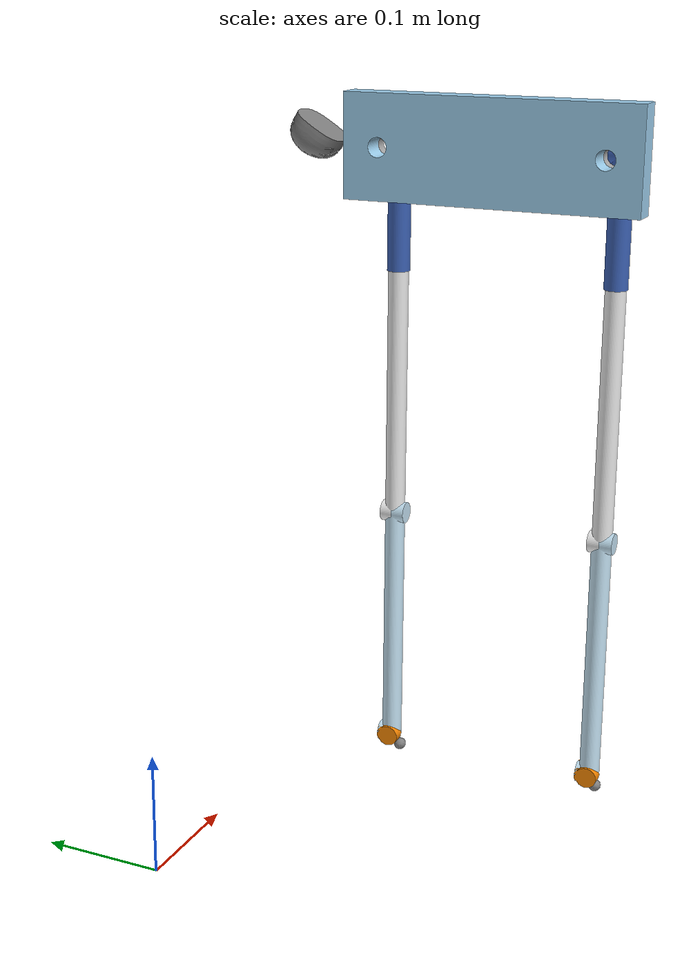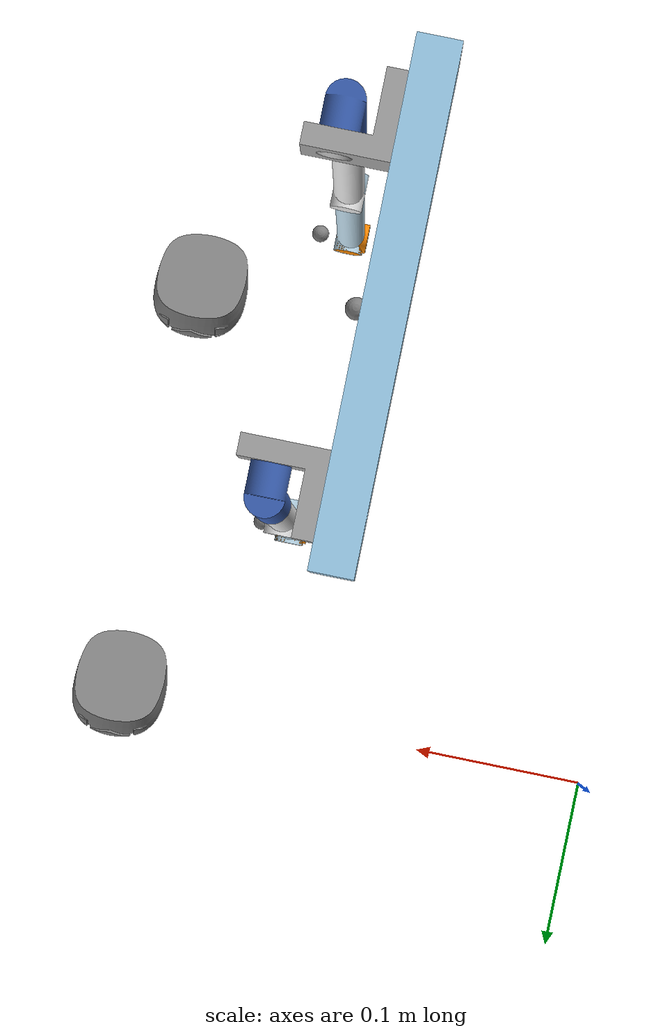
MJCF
<?xml version="1.0" ?>
<!-- Generated using onshape-to-robot -->
<!-- Onshape document_id: e804ad521de5849fb5d906f3 -->
<mujoco model="xmls">
  <compiler angle="radian" meshdir="assets" autolimits="true"/>
  <option noslip_iterations="1"/>
  <default>
    <default class="xmls">
      <joint frictionloss="0.1" armature="0.005"/>
      <position kp="50" dampratio="1"/>
      <default class="visual">
        <geom type="mesh" contype="0" conaffinity="0" group="2"/>
      </default>
      <default class="collision">
        <geom group="3"/>
      </default>
    </default>
  </default>
  <!-- Additional sensors.xml -->
  <sensor>
    <gyro site="trunk" name="gyro"/>
    <velocimeter site="trunk" name="local_linvel"/>
    <accelerometer site="trunk" name="accelerometer"/>
    <framezaxis objtype="site" objname="trunk" name="upvector"/>
    <framexaxis objtype="site" objname="trunk" name="forwardvector"/>
    <framelinvel objtype="site" objname="trunk" name="global_linvel"/>
    <frameangvel objtype="site" objname="trunk" name="global_angvel"/>
    <framepos objtype="site" objname="trunk" name="position"/>
    <framequat objtype="site" objname="trunk" name="orientation"/>
    <framelinvel objtype="site" objname="right_foot" name="right_foot_global_linvel"/>
    <framelinvel objtype="site" objname="left_foot" name="left_foot_global_linvel"/>
    <framexaxis objtype="site" objname="left_foot" name="left_foot_upvector"/>
    <framexaxis objtype="site" objname="right_foot" name="right_foot_upvector"/>
    <framepos objtype="site" objname="left_foot" name="left_foot_pos"/>
    <framepos objtype="site" objname="right_foot" name="right_foot_pos"/>
  </sensor>
  <!-- Additional joints_properties.xml -->
  <default>
    <default class="actuator">
      <geom contype="0" conaffinity="0"/>
      <joint damping="0.60" frictionloss="0.052" armature="0.028"/>
      <position kp="17.8" kv="0.0" forcerange="-3.35 3.35"/>
    </default>
    <default class="backlash">
      <!-- +/- 0.5° of backlash -->
      <joint damping="0.01" frictionloss="0" armature="0.01" limited="true" range="-0.008726646259971648 0.008726646259971648"/>
    </default>
  </default>
  <worldbody>
    <!-- Link part_1 -->
    <body name="part_1" pos="0 0 0.5" quat="1 0 0 0" childclass="xmls">
      <freejoint name="part_1_freejoint"/>
      <inertial pos="0.165033 -0.204503 0.0575783" mass="0.451164" fullinertia="0.00220527 0.000260248 0.0019751 5.24043e-21 2.60518e-20 -7.22333e-20"/>
      <!-- Part part_1 -->
      <geom type="mesh" class="visual" pos="0.155033 -0.204503 0.0575783" quat="0.707107 -1.24826e-16 1.11022e-16 0.707107" mesh="part_1" material="part_1_material"/>
      <!-- Frame trunk -->
      <site group="0" name="trunk" pos="0.177533 -0.204503 0.0575783" quat="1 -5.55112e-17 2.22045e-16 1.34714e-18"/>
      <!-- Link part_2 -->
      <body name="part_2" pos="0.175033 -0.117003 0.0575783" quat="0.5 -0.5 -0.5 0.5">
        <!-- Joint from part_1 to part_2 -->
        <joint name="left_hip_roll" type="hinge" range="-0.7853981633974483 0.7853981633974483" class="actuator"/>
        <inertial pos="-0.0116006 2.25352e-19 -0.0131167" mass="0.0215278" fullinertia="4.88403e-06 6.00093e-06 4.91185e-06 1.27448e-37 -1.46767e-06 -3.09513e-38"/>
        <!-- Part part_2 -->
        <geom type="mesh" class="visual" pos="-0.0875 -1.38778e-17 0.02" quat="0.707107 0.707107 -0 -2.79664e-35" mesh="part_2" material="part_2_material"/>
        <!-- Link part_3 -->
        <body name="part_3" pos="-0.015 -1.38778e-17 -0.025" quat="0.707107 -4.15832e-16 -0.707107 -8.88178e-16">
          <!-- Joint from part_2 to part_3 -->
          <joint name="left_hip_pitch" type="hinge" range="-0.3490658503988659 1.5707963267948966" class="actuator"/>
          <inertial pos="3.40913e-09 0.0448354 -0.0141247" mass="0.0353649" fullinertia="3.59567e-05 1.66969e-06 3.57291e-05 1.41653e-11 2.91851e-11 1.40753e-06"/>
          <!-- Part part_3 -->
          <geom type="mesh" class="visual" pos="0.045 -6.245e-17 0.0725" quat="0.5 0.5 0.5 -0.5" mesh="part_3" material="part_3_material"/>
          <!-- Link part_4 -->
          <body name="part_4" pos="0 0.1 -0.015" quat="0.5 0.5 0.5 -0.5">
            <!-- Joint from part_3 to part_4 -->
            <joint name="left_hip_yaw" type="hinge" range="-2.6179938779914944 2.6179938779914944" class="actuator"/>
            <inertial pos="0.000209384 8.57718e-09 -0.103723" mass="0.0521727" fullinertia="0.000187482 0.00018752 1.72388e-06 -7.06323e-13 1.06442e-06 3.38151e-11"/>
            <!-- Part part_4 -->
            <geom type="mesh" class="visual" pos="-0.0875 0.045 0.1" quat="1 0 -1.44284e-18 -3.65021e-20" mesh="part_4" material="part_4_material"/>
            <!-- Link part_5 -->
            <body name="part_5" pos="0 0 -0.2" quat="0.5 0.5 0.5 0.5">
              <!-- Joint from part_4 to part_5 -->
              <joint name="left_knee" type="hinge" range="0.0 1.5707963267948966" class="actuator"/>
              <inertial pos="-4.29344e-08 -0.1 1.42274e-08" mass="0.0540806" fullinertia="0.000208137 1.84387e-06 0.000208057 7.1479e-11 9.65571e-12 2.21017e-06"/>
              <!-- Part part_5 -->
              <geom type="mesh" class="visual" pos="0.045 0.3 -0.0875" quat="0.5 -0.5 -0.5 -0.5" mesh="part_5" material="part_5_material"/>
              <!-- Link part_6 -->
              <body name="part_6" pos="4.16334e-16 -0.2 0.01" quat="5.53064e-17 -5.20417e-18 1.10818e-16 1">
                <!-- Joint from part_5 to part_6 -->
                <joint name="left_ankle_pitch" type="hinge" range="-1.5707963267948966 1.5707963267948966" class="actuator"/>
                <inertial pos="-0.00222383 0 -0.00777617" mass="0.00465095" fullinertia="1.90809e-07 2.06197e-07 1.90809e-07 2.10229e-12 -3.77922e-08 2.10229e-12"/>
                <!-- Part part_6 -->
                <geom type="mesh" class="visual" pos="0.045 -0.5 0.0775" quat="0.5 0.5 0.5 -0.5" mesh="part_6" material="part_6_material"/>
                <!-- Link foot -->
                <body name="foot" pos="-0.01 0 -0.01" quat="0.707107 1.03325e-16 0.707107 -2.22045e-16">
                  <!-- Joint from part_6 to foot -->
                  <joint name="left_ankle_roll" type="hinge" range="-0.7853981633974483 0.7853981633974483" class="actuator"/>
                  <inertial pos="-3.76166e-09 0.0136645 0.0226826" mass="0.0306953" fullinertia="1.34934e-05 1.34204e-05 3.57951e-06 -3.33658e-12 3.03112e-13 -1.34506e-06"/>
                  <!-- Part foot -->
                  <geom type="mesh" class="visual" pos="-0.0875 -0.5 0.055" quat="0.707107 0.707107 -0 1.96673e-33" mesh="foot" material="foot_material"/>
                  <geom type="mesh" class="collision" pos="-0.0875 -0.5 0.055" quat="0.707107 0.707107 -0 1.96673e-33" mesh="foot" material="foot_material"  name="left_foot_bottom"/>
                  <!-- Frame left_foot -->
                  <site group="0" name="left_foot" pos="-5.55112e-17 0.0200185 0.028571" quat="0.5 0.5 -0.5 0.5"/>
                </body>
              </body>
            </body>
          </body>
        </body>
      </body>
      <!-- Link part_2_2 -->
      <body name="part_2_2" pos="0.175033 -0.292003 0.0575783" quat="0.5 0.5 -0.5 -0.5">
        <!-- Joint from part_1 to part_2_2 -->
        <joint name="right_hip_roll" type="hinge" range="-0.7853981633974483 0.7853981633974483" class="actuator"/>
        <inertial pos="-0.0116006 2.25352e-19 -0.0131167" mass="0.0215278" fullinertia="4.88403e-06 6.00093e-06 4.91185e-06 0 -1.46767e-06 0"/>
        <!-- Part part_2_2 -->
        <geom type="mesh" class="visual" pos="-0.0875 -1.38778e-17 0.02" quat="0.707107 0.707107 0 1.0358e-34" mesh="part_2" material="part_2_material"/>
        <!-- Link part_3_2 -->
        <body name="part_3_2" pos="-0.015 4.85723e-17 -0.025" quat="3.23091e-16 -0.707107 4.44089e-16 0.707107">
          <!-- Joint from part_2_2 to part_3_2 -->
          <joint name="right_hip_pitch" type="hinge" range="-1.5707963267948966 0.3490658503988659" class="actuator"/>
          <inertial pos="3.40913e-09 0.0448354 -0.0141247" mass="0.0353649" fullinertia="3.59567e-05 1.66969e-06 3.57291e-05 1.41653e-11 2.91851e-11 1.40753e-06"/>
          <!-- Part part_3_2 -->
          <geom type="mesh" class="visual" pos="0.045 -6.245e-17 0.0725" quat="0.5 0.5 0.5 -0.5" mesh="part_3" material="part_3_material"/>
          <!-- Link part_4_2 -->
          <body name="part_4_2" pos="8.32667e-16 0.1 -0.015" quat="0.5 0.5 -0.5 0.5">
            <!-- Joint from part_3_2 to part_4_2 -->
            <joint name="right_hip_yaw" type="hinge" range="-2.6179938779914935 2.6179938779914953" class="actuator"/>
            <inertial pos="0.000209384 8.57718e-09 -0.103723" mass="0.0521727" fullinertia="0.000187482 0.00018752 1.72388e-06 -7.06323e-13 1.06442e-06 3.38151e-11"/>
            <!-- Part part_4_2 -->
            <geom type="mesh" class="visual" pos="-0.0875 0.045 0.1" quat="1 0 0 0" mesh="part_4" material="part_4_material"/>
            <!-- Link part_5_2 -->
            <body name="part_5_2" pos="0 5.55112e-17 -0.2" quat="0.5 0.5 0.5 0.5">
              <!-- Joint from part_4_2 to part_5_2 -->
              <joint name="right_knee" type="hinge" range="0.0 1.5707963267948966" class="actuator"/>
              <inertial pos="-4.29344e-08 -0.1 1.42274e-08" mass="0.0540806" fullinertia="0.000208137 1.84387e-06 0.000208057 7.1479e-11 9.65571e-12 2.21017e-06"/>
              <!-- Part part_5_2 -->
              <geom type="mesh" class="visual" pos="0.045 0.3 -0.0875" quat="0.5 -0.5 -0.5 -0.5" mesh="part_5" material="part_5_material"/>
              <!-- Link part_6_2 -->
              <body name="part_6_2" pos="1.4988e-15 -0.2 0.01" quat="1.35778e-32 0 -6.71617e-19 -1">
                <!-- Joint from part_5_2 to part_6_2 -->
                <joint name="right_ankle_pitch" type="hinge" range="-1.5707963267948966 1.5707963267948966" class="actuator"/>
                <inertial pos="-0.00222383 5.55112e-17 -0.00777617" mass="0.00465095" fullinertia="1.90809e-07 2.06197e-07 1.90809e-07 2.10229e-12 -3.77922e-08 2.10229e-12"/>
                <!-- Part part_6_2 -->
                <geom type="mesh" class="visual" pos="0.045 -0.5 0.0775" quat="0.5 0.5 0.5 -0.5" mesh="part_6" material="part_6_material"/>
                <!-- Link foot_2 -->
                <body name="foot_2" pos="-0.01 1.11022e-16 -0.01" quat="0.707107 -1.54701e-17 0.707107 -1.11022e-16">
                  <!-- Joint from part_6_2 to foot_2 -->
                  <joint name="right_ankle_roll" type="hinge" range="-0.7853981633974474 0.7853981633974492" class="actuator"/>
                  <inertial pos="-3.76166e-09 0.0136645 0.0226826" mass="0.0306953" fullinertia="1.34934e-05 1.34204e-05 3.57951e-06 -3.33658e-12 3.03112e-13 -1.34506e-06"/>
                  <!-- Part foot_2 -->
                  <geom type="mesh" class="visual" pos="-0.0875 -0.5 0.055" quat="0.707107 0.707107 -0 8.03651e-33" mesh="foot" material="foot_material"/>
                  <geom type="mesh" class="collision" pos="-0.0875 -0.5 0.055" quat="0.707107 0.707107 -0 8.03651e-33" mesh="foot" material="foot_material" name="right_foot_bottom"/>
                  <!-- Frame right_foot -->
                  <site group="0" name="right_foot" pos="-5.55112e-17 0.0200185 0.028571" quat="0.5 0.5 -0.5 0.5"/>
                </body>
              </body>
            </body>
          </body>
        </body>
      </body>
    </body>
  </worldbody>
  <asset>
    <mesh file="foot.stl"/>
    <mesh file="part_5.stl"/>
    <mesh file="part_6.stl"/>
    <mesh file="part_1.stl"/>
    <mesh file="part_3.stl"/>
    <mesh file="part_4.stl"/>
    <mesh file="part_2.stl"/>
    <material name="part_1_material" rgba="0.615686 0.811765 0.929412 1"/>
    <material name="part_2_material" rgba="0.647059 0.647059 0.647059 1"/>
    <material name="part_3_material" rgba="0.231373 0.380392 0.705882 1"/>
    <material name="part_4_material" rgba="0.917647 0.917647 0.917647 1"/>
    <material name="part_5_material" rgba="0.768627 0.886275 0.952941 1"/>
    <material name="part_6_material" rgba="0.972549 0.529412 0.00392157 1"/>
    <material name="foot_material" rgba="0.498039 0.498039 0.498039 1"/>
  </asset>
  <actuator>
    <position class="actuator" name="left_hip_roll" joint="left_hip_roll" inheritrange="1"/>
    <position class="actuator" name="left_hip_pitch" joint="left_hip_pitch" inheritrange="1"/>
    <position class="actuator" name="left_hip_yaw" joint="left_hip_yaw" inheritrange="1"/>
    <position class="actuator" name="left_knee" joint="left_knee" inheritrange="1"/>
    <position class="actuator" name="left_ankle_pitch" joint="left_ankle_pitch" inheritrange="1"/>
    <position class="actuator" name="left_ankle_roll" joint="left_ankle_roll" inheritrange="1"/>
    <position class="actuator" name="right_hip_roll" joint="right_hip_roll" inheritrange="1"/>
    <position class="actuator" name="right_hip_pitch" joint="right_hip_pitch" inheritrange="1"/>
    <position class="actuator" name="right_hip_yaw" joint="right_hip_yaw" inheritrange="1"/>
    <position class="actuator" name="right_knee" joint="right_knee" inheritrange="1"/>
    <position class="actuator" name="right_ankle_pitch" joint="right_ankle_pitch" inheritrange="1"/>
    <position class="actuator" name="right_ankle_roll" joint="right_ankle_roll" inheritrange="1"/>
  </actuator>
  <equality/>
</mujoco>
